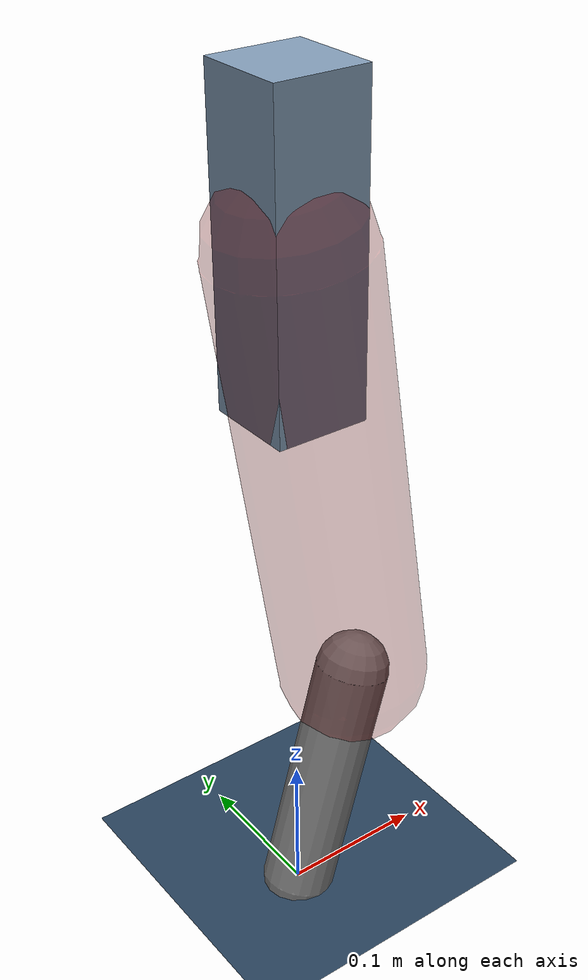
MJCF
<mujoco model="Hopper2D">
	<compiler inertiafromgeom="true" angle="radian" />
	<option timestep="0.001" integrator="implicit" cone="elliptic" solver="Newton" tolerance="1e-10" />

	<default>
		<geom contype="1" conaffinity="1" condim="3" friction="2 0.005 0.0001" solref="0.005 1" />
		<joint limited="true" damping="0.1" />
	</default>

	<asset>
		<texture name="skybox" type="skybox" builtin="gradient" rgb1=".4 .6 .8" rgb2="0 0 0" width="800" height="800" />
		<texture name="grid" type="2d" builtin="checker" rgb1=".1 .2 .3" rgb2=".2 .3 .4" width="300" height="300" mark="edge" markrgb=".2 .3 .4" />
		<material name="ground" texture="grid" texrepeat="1 1" texuniform="true" reflectance="0.1" />
		<material name="leg" rgba="0.5 0.6 0.7 1" />
	</asset>

	<worldbody>

		<geom name="floor" type="plane" size="5 5 0.25" material="ground" />

		<light directional="false" diffuse="0.8 0.8 0.8" specular="0.3 0.3 0.3" pos="0 0 2" dir="0 0 -1" />
		<light mode="targetbodycom" target="base" directional="false" diffuse="0.8 0.8 0.8" specular="0.3 0.3 0.3" pos="0 0 2" dir="0 0 -1" />

		<camera name="fixed" pos="0 -2 1" xyaxes="1 0 0 0 0 1" />
		<camera name="tracking" mode="trackcom" pos="0 -3 1" />

		<body name="root" pos="0 0 0.47214433584906845">
			<joint name="slide_x" type="slide" axis="1 0 0" range="-100 100" />
			<joint name="slide_z" type="slide" axis="0 0 1" range="0 10" />

			<body name="base" pos="0 0 0">
				<geom name="torso" type="box" size="0.03 0.03 0.1" mass="2.246" material="leg" />

				<body name="link1" pos="0 0 0" euler="0 1.4187429245917014 0">
					<joint type="hinge" axis="0 -1 0" pos="0 0 0" name="hinge1" limited="true" range="-3.14 3.14" stiffness="0" damping="0.1" />
					<geom name="thigh" type="capsule" fromto="0 0 0 0.30888053307177077 0 0" size="0.05" rgba="0.5 0 0 0.3" mass="1.0128654926009582" />

					<body name="link2" pos="0.30888053307177077 0 0" euler="0 0.42547244529099093 0">
						<joint type="hinge" axis="0 -1 0" pos="0 0 0" name="hinge2" limited="true" range="-3.14 3.14" stiffness="0" damping="0.1" />
						<geom name="shank" type="capsule" fromto="0 0 0 0.1732638027772977 0 0" size="0.025" mass="0.37811104222183817" />

					</body>
				</body>
			</body>
		</body>
	</worldbody>

	<actuator>
		<motor name="torque1" joint="hinge1" ctrlrange="-88.29139220081537 88.29139220081537" ctrllimited="true" gear="1" />
		<motor name="torque2" joint="hinge2" ctrlrange="-91.30371520875535 91.30371520875535" ctrllimited="true" gear="1" />
	</actuator>
</mujoco>
